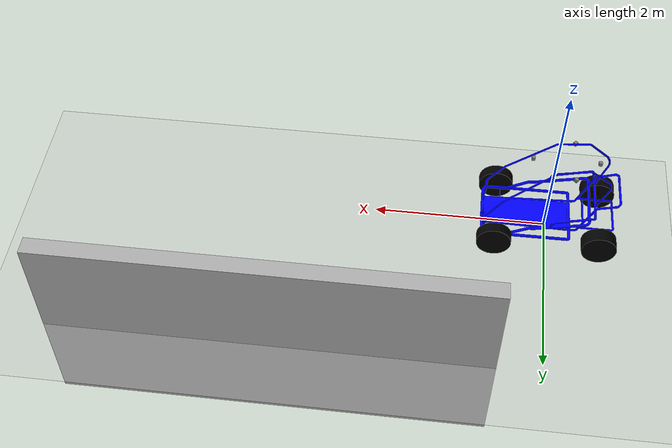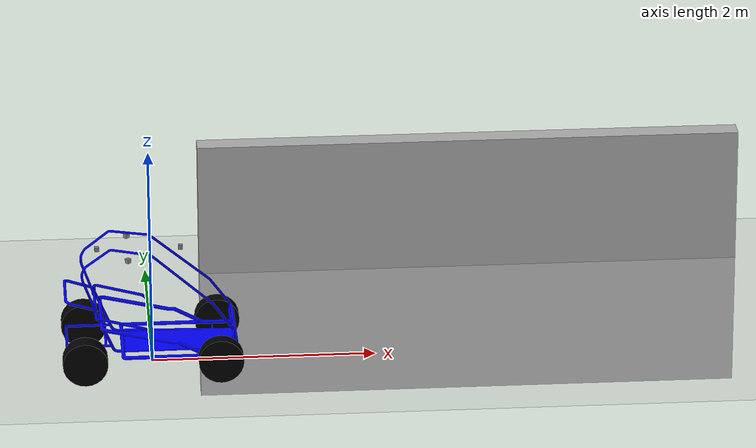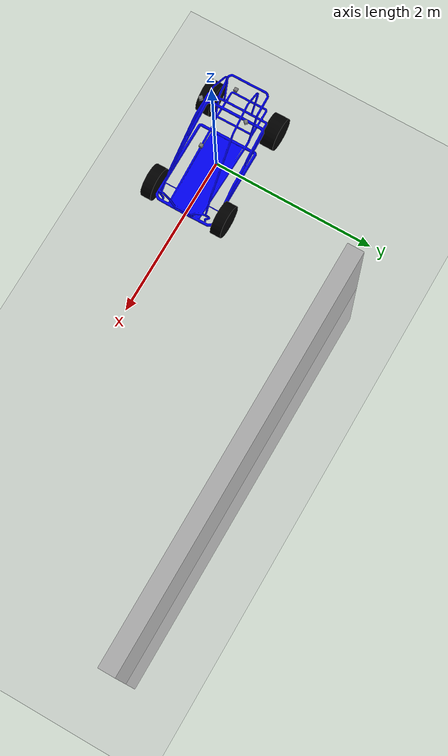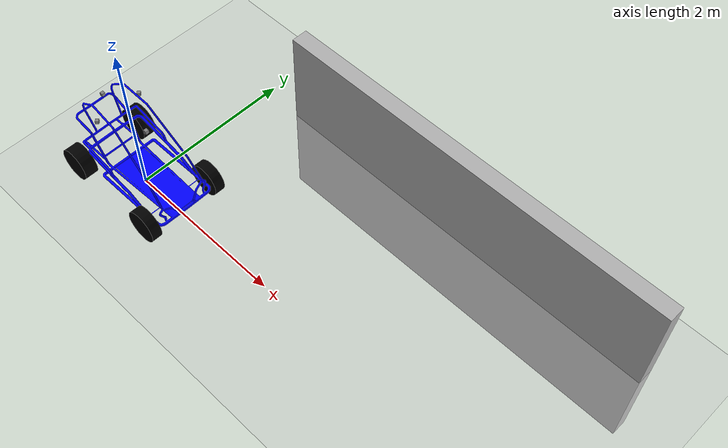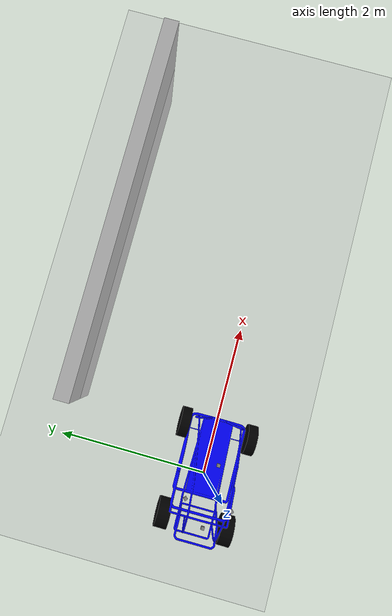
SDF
<?xml version="1.0" ?>
<sdf version="1.8">

    <world name="car_world">
        <!-- must need this for all sensors to work-->
        <plugin name='ignition::gazebo::systems::Sensors' filename='ignition-gazebo-sensors-system'>
            <render_engine>ogre2</render_engine>
        </plugin>
        <plugin
            filename="ignition-gazebo-physics-system"
            name="ignition::gazebo::systems::Physics">
        </plugin>
        <plugin
            filename="ignition-gazebo-user-commands-system"
            name="ignition::gazebo::systems::UserCommands">
        </plugin>
        <plugin
            filename="ignition-gazebo-scene-broadcaster-system"
            name="ignition::gazebo::systems::SceneBroadcaster">
        </plugin>
        <plugin filename="libignition-gazebo-imu-system.so"
        name="ignition::gazebo::systems::Imu">
        </plugin>
        <gui fullscreen='false'>
            <plugin name='3D View' filename='GzScene3D'>
              <ignition-gui>
                <title>3D View</title>
                <property type='bool' key='showTitleBar'>false</property>
                <property type='string' key='state'>docked</property>
              </ignition-gui>
              <engine>ogre2</engine>
              <scene>scene</scene>
              <ambient_light>0.4 0.4 0.4</ambient_light>
              <background_color>0.5 0.8 0.95</background_color>
              <camera_follow>
                <target>vehicle_blue</target>
                <p_gain>0.5</p_gain>
                <offset>-5 0 2</offset>
              </camera_follow>
            </plugin>
            <plugin name='World control' filename='WorldControl'>
              <ignition-gui>
                <title>World control</title>
                <property type='bool' key='showTitleBar'>false</property>
                <property type='bool' key='resizable'>false</property>
                <property type='double' key='height'>72</property>
                <property type='double' key='width'>121</property>
                <property type='double' key='z'>1</property>
                <property type='string' key='state'>floating</property>
                <anchors target='3D View'>
                  <line own='left' target='left'/>
                  <line own='bottom' target='bottom'/>
                </anchors>
              </ignition-gui>
              <play_pause>true</play_pause>
              <step>true</step>
              <start_paused>true</start_paused>
            </plugin>
            <plugin name='World stats' filename='WorldStats'>
              <ignition-gui>
                <title>World stats</title>
                <property type='    bool' key='showTitleBar'>false</property>
                <property type='bool' key='resizable'>false</property>
                <property type='double' key='height'>110</property>
                <property type='double' key='width'>290</property>
                <property type='double' key='z'>1</property>
                <property type='string' key='state'>floating</property>
                <anchors target='3D View'>
                  <line own='right' target='right'/>
                  <line own='bottom' target='bottom'/>
                </anchors>
              </ignition-gui>
              <sim_time>true</sim_time>
              <real_time>true</real_time>
              <real_time_factor>true</real_time_factor>
              <iterations>true</iterations>
            </plugin>
            <plugin name='dis' filename='ImageDisplay'>
              <ignition-gui>
                <property key='state' type='string'>docked</property>
              </ignition-gui>
              <topic>front_camera</topic>
            </plugin>
            <plugin name='Teleop' filename='Teleop'>
              <ignition-gui>
                <property type='string' key='state'>docked</property>
              </ignition-gui>
              <topic>/cmd_vel</topic>
            </plugin>
        </gui>

        <gravity>0 0 -9.8</gravity>
        <magnetic_field>6e-06 2.3e-05 -4.2e-05</magnetic_field>
        <atmosphere type='adiabatic'/>
        <physics type='ode'>
          <max_step_size>0.001</max_step_size>
          <real_time_factor>1</real_time_factor>
          <real_time_update_rate>1000</real_time_update_rate>
        </physics>

        <light type="directional" name="sun">
            <cast_shadows>true</cast_shadows>
            <pose>0 0 10 0 0 0</pose>
            <diffuse>0.8 0.8 0.8 1</diffuse>
            <specular>0.2 0.2 0.2 1</specular>
            <attenuation>
                <range>1000</range>
                <constant>0.9</constant>
                <linear>0.01</linear>
                <quadratic>0.001</quadratic>
            </attenuation>
            <direction>-0.5 0.1 -0.9</direction>
        </light>

        <model name="ground_plane">
            <static>true</static>
            <link name="link">
                <collision name="collision">
                <geometry>
                    <plane>
                    <normal>0 0 1</normal>
                    </plane>
                </geometry>
                </collision>
                <visual name="visual">
                <geometry>
                    <plane>
                    <normal>0 0 1</normal>
                    <size>100 100</size>
                    </plane>
                </geometry>
                <material>
                    <ambient>0.8 0.8 0.8 1</ambient>
                    <diffuse>0.8 0.8 0.8 1</diffuse>
                    <specular>0.8 0.8 0.8 1</specular>
                </material>
                </visual>
            </link>
        </model>

        <model name="simple_wall">
            <static>true</static> <!-- Makes the wall non-movable -->
            <pose>3 2 0 0 0 0</pose> <!-- x, y, z position and roll, pitch, yaw orientation -->
            <link name="wall_link">
              <collision name="wall_collision">
                <geometry>
                  <box>
                    <size>5 0.2 2.5</size> <!-- Width, Depth, Height -->
                  </box>
                </geometry>
                <surface>
                  <contact>
                    <collide_without_contact>true</collide_without_contact>
                  </contact>
                </surface>
              </collision>

              <visual name="wall_visual">
                <geometry>
                  <box>
                    <size>5 0.2 2.5</size> <!-- Width, Depth, Height -->
                  </box>
                </geometry>
                <material>
                  <ambient>0.7 0.7 0.7 1</ambient> <!-- Gray color -->
                  <diffuse>0.7 0.7 0.7 1</diffuse>
                  <specular>0.1 0.1 0.1 1</specular>
                </material>
              </visual>
            </link>
        </model>

        <model name='vehicle_blue' canonical_link='chassis'>
            <pose relative_to='world'>0 0 0 0 0 0</pose>   <!--the pose is relative to the world by default-->

            <!--chassis-->
            <link name='chassis'>
                <pose relative_to='__model__'>0.0 0 0.2 0 0 0</pose>
                <sensor name="imu_sensor" type="imu">
                    <always_on>1</always_on>
                    <update_rate>1</update_rate>
                    <visualize>true</visualize>
                    <topic>imu</topic>
                </sensor>
                <visual name='visual'>
                    <geometry>
			<mesh>
				<uri>new_car_chassis.stl</uri>
                        <scale>0.58 0.58 0.58</scale>
			</mesh>
                    </geometry>
                    <!--Color of the link-->
                    <material>
                        <ambient>0.0 0.0 1.0 1</ambient>
                        <diffuse>0.0 0.0 1.0 1</diffuse>
                        <specular>0.0 0.0 1.0 1</specular>
                    </material>
                </visual>
                <collision name='collision'>
                    <geometry>
                        <mesh>
                            <uri>new_car_chassis.stl</uri>
                            <scale>0.58 0.58 0.58</scale>
                        </mesh>
                    </geometry>
                </collision>
                <!-- Cameras -->
                <sensor name='front_camera_sensor' type='camera'>
                    <pose>0.27 0 1.1 0 0 0</pose>
                    <topic>front_camera</topic>
                    <update_rate>30</update_rate>
                    <enable_metrics>false</enable_metrics>
                    <camera name='front_camera'>
                        <pose>0 0 0 0 -0 0</pose>
                        <horizontal_fov>1.3962600000000001</horizontal_fov>
                        <image>
                            <width>800</width>
                            <height>800</height>
                            <format>RGB_INT8</format>
                            <anti_aliasing>4</anti_aliasing>
                        </image>
                        <camera_info_topic>__default__</camera_info_topic>
                        <trigger_topic></trigger_topic>
                        <triggered>false</triggered>
                        <clip>
                            <near>0.02</near>
                            <far>300</far>
                        </clip>
                    <save enabled='false'>
                        <path>__default__</path>
                    </save>
                    <visibility_mask>4294967295</visibility_mask>
                    <noise>
                        <type>gaussian</type>
                        <mean>0</mean>
                        <stddev>0.0070000000000000001</stddev>
                    </noise>
                    <distortion>
                        <k1>0</k1>
                        <k2>0</k2>
                        <k3>0</k3>
                        <p1>0</p1>
                        <p2>0</p2>
                        <center>0.5 0.5</center>
                    </distortion>
                    <lens>
                        <type>stereographic</type>
                        <scale_to_hfov>true</scale_to_hfov>
                        <cutoff_angle>1.5708</cutoff_angle>
                        <env_texture_size>256</env_texture_size>
                    </lens>
                    <optical_frame_id></optical_frame_id>
                    </camera>
                </sensor>
                <sensor name='back_camera_sensor' type='camera'>
                    <pose>-0.47 0 1.1 0 0 3.1415</pose>
                    <topic>back_camera</topic>
                    <update_rate>30</update_rate>
                    <enable_metrics>false</enable_metrics>
                    <camera name='back_camera'>
                        <pose>0 0 0 0 -0 0</pose>
                        <horizontal_fov>1.3962600000000001</horizontal_fov>
                        <image>
                            <width>800</width>
                            <height>800</height>
                            <format>RGB_INT8</format>
                            <anti_aliasing>4</anti_aliasing>
                        </image>
                        <camera_info_topic>__default__</camera_info_topic>
                        <trigger_topic></trigger_topic>
                        <triggered>false</triggered>
                        <clip>
                            <near>0.02</near>
                            <far>300</far>
                        </clip>
                        <save enabled='false'>
                            <path>__default__</path>
                        </save>
                        <visibility_mask>4294967295</visibility_mask>
                        <noise>
                            <type>gaussian</type>
                            <mean>0</mean>
                            <stddev>0.0070000000000000001</stddev>
                        </noise>
                        <distortion>
                            <k1>0</k1>
                            <k2>0</k2>
                            <k3>0</k3>
                            <p1>0</p1>
                            <p2>0</p2>
                            <center>0.5 0.5</center>
                        </distortion>
                        <lens>
                            <type>stereographic</type>
                            <scale_to_hfov>true</scale_to_hfov>
                            <cutoff_angle>1.5708</cutoff_angle>
                            <env_texture_size>256</env_texture_size>
                        </lens>
                        <optical_frame_id></optical_frame_id>
                    </camera>
                </sensor>
                <sensor name='left_camera_sensor' type='camera'>
                    <pose>-0.2 0.28 1.1 0 0 0.785</pose>
                    <topic>left_camera</topic>
                    <update_rate>30</update_rate>
                    <enable_metrics>false</enable_metrics>
                    <camera name='left_camera'>
                      <pose>0 0 0 0 -0 0</pose>
                      <horizontal_fov>1.3962600000000001</horizontal_fov>
                      <image>
                        <width>800</width>
                        <height>800</height>
                        <format>RGB_INT8</format>
                        <anti_aliasing>4</anti_aliasing>
                      </image>
                      <camera_info_topic>__default__</camera_info_topic>
                      <trigger_topic></trigger_topic>
                      <triggered>false</triggered>
                      <clip>
                        <near>0.02</near>
                        <far>300</far>
                      </clip>
                      <save enabled='false'>
                        <path>__default__</path>
                      </save>
                      <visibility_mask>4294967295</visibility_mask>
                      <noise>
                        <type>gaussian</type>
                        <mean>0</mean>
                        <stddev>0.0070000000000000001</stddev>
                      </noise>
                      <distortion>
                        <k1>0</k1>
                        <k2>0</k2>
                        <k3>0</k3>
                        <p1>0</p1>
                        <p2>0</p2>
                        <center>0.5 0.5</center>
                      </distortion>
                      <lens>
                        <type>stereographic</type>
                        <scale_to_hfov>true</scale_to_hfov>
                        <cutoff_angle>1.5708</cutoff_angle>
                        <env_texture_size>256</env_texture_size>
                      </lens>
                      <optical_frame_id></optical_frame_id>
                    </camera>
                  </sensor>
                  <sensor name='right_camera_sensor' type='camera'>
                    <pose>-0.2 -0.28 1.1 0 0 -0.785</pose>
                    <topic>right_camera</topic>
                    <update_rate>30</update_rate>
                    <enable_metrics>false</enable_metrics>
                    <camera name='right_camera'>
                      <pose>0 0 0 0 -0 0</pose>
                      <horizontal_fov>1.3962600000000001</horizontal_fov>
                      <image>
                        <width>800</width>
                        <height>800</height>
                        <format>RGB_INT8</format>
                        <anti_aliasing>4</anti_aliasing>
                      </image>
                      <camera_info_topic>__default__</camera_info_topic>
                      <trigger_topic></trigger_topic>
                      <triggered>false</triggered>
                      <clip>
                        <near>0.02</near>
                        <far>300</far>
                      </clip>
                      <save enabled='false'>
                        <path>__default__</path>
                      </save>
                      <visibility_mask>4294967295</visibility_mask>
                      <noise>
                        <type>gaussian</type>
                        <mean>0</mean>
                        <stddev>0.0070000000000000001</stddev>
                      </noise>
                      <distortion>
                        <k1>0</k1>
                        <k2>0</k2>
                        <k3>0</k3>
                        <p1>0</p1>
                        <p2>0</p2>
                        <center>0.5 0.5</center>
                      </distortion>
                      <lens>
                        <type>stereographic</type>
                        <scale_to_hfov>true</scale_to_hfov>
                        <cutoff_angle>1.5708</cutoff_angle>
                        <env_texture_size>256</env_texture_size>
                      </lens>
                      <optical_frame_id></optical_frame_id>
                    </camera>
                  </sensor>
            </link>
            <link name='front_camera_marker'>
                <pose>0.27 0 1.1 0 0 0</pose> <!-- Adjust this pose to match the camera's pose -->
                <collision name='camera_marker_collision'>
                    <geometry>
                        <box>
                            <size>0.04 0.04 0.04</size> <!-- Size of the block -->
                        </box>
                    </geometry>
                </collision>
                <visual name='front_camera_marker'>
                    <geometry>
                        <box>
                            <size>0.04 0.04 0.04</size> <!-- Size of the block -->
                        </box>
                    </geometry>
                    <material>
                        <ambient>0.5 0.5 0.5 1</ambient>
                        <diffuse>0.5 0.5 0.5 1</diffuse>
                        <specular>0.5 0.5 0.5 1</specular>
                    </material>
                </visual>
            </link>
            <link name='back_camera_marker'>
                <pose>-0.47 0 1.1 0 0 3.1415</pose> <!-- Adjust this pose to match the camera's pose -->
                <collision name='camera_marker_collision'>
                    <geometry>
                        <box>
                            <size>0.04 0.04 0.04</size> <!-- Size of the block -->
                        </box>
                    </geometry>
                </collision>
                <visual name='back_camera_marker'>
                    <geometry>
                        <box>
                            <size>0.04 0.04 0.04</size> <!-- Size of the block -->
                        </box>
                    </geometry>
                    <material>
                        <ambient>0.5 0.5 0.5 1</ambient>
                        <diffuse>0.5 0.5 0.5 1</diffuse>
                        <specular>0.5 0.5 0.5 1</specular>
                    </material>
                </visual>
            </link>
            <link name='left_camera_marker'>
                <pose>-0.2 0.28 1.1 0 0 0.785</pose> <!-- Adjust this pose to match the camera's pose -->
                <collision name='camera_marker_collision'>
                    <geometry>
                        <box>
                            <size>0.04 0.04 0.04</size> <!-- Size of the block -->
                        </box>
                    </geometry>
                </collision>
                <visual name='left_camera_marker'>
                    <geometry>
                        <box>
                            <size>0.04 0.04 0.04</size> <!-- Size of the block -->
                        </box>
                    </geometry>
                    <material>
                        <ambient>0.5 0.5 0.5 1</ambient>
                        <diffuse>0.5 0.5 0.5 1</diffuse>
                        <specular>0.5 0.5 0.5 1</specular>
                    </material>
                </visual>
            </link>
            <link name='right_camera_marker'>
                <pose>-0.2 -0.28 1.1 0 0 -0.785</pose> <!-- Adjust this pose to match the camera's pose -->
                <collision name='camera_marker_collision'>
                    <geometry>
                        <box>
                            <size>0.04 0.04 0.04</size> <!-- Size of the block -->
                        </box>
                    </geometry>
                </collision>
                <visual name='right_camera_marker'>
                    <geometry>
                        <box>
                            <size>0.04 0.04 0.04</size> <!-- Size of the block -->
                        </box>
                    </geometry>
                    <material>
                        <ambient>0.5 0.5 0.5 1</ambient>
                        <diffuse>0.5 0.5 0.5 1</diffuse>
                        <specular>0.5 0.5 0.5 1</specular>
                    </material>
                </visual>
            </link>

            <!-- WHEELS  -->
            <!--rear Left wheel-->
            <link name='rear_left_wheel'>
                <pose relative_to="chassis">-0.6 0.42 0 -1.5707 0 0</pose> <!--angles are in radian-->
                <inertial>
                    <mass>7</mass>
                    <inertia>
                        <ixx>0.086858</ixx>
                        <ixy>0</ixy>
                        <ixz>0</ixz>
                        <iyy>0.086858</iyy>
                        <iyz>0</iyz>
                        <izz>0.14</izz>
                    </inertia>
                </inertial>
                <visual name='visual'>
                    <geometry>
                        <cylinder>
                            <radius>0.2</radius>
                            <length>0.17</length>
                        </cylinder>
                    </geometry>
                    <material>
                        <ambient>0.0 0.0 0.0 1</ambient>
                        <diffuse>0.0 0.0 0.0 1</diffuse>
                        <specular>0.0 0.0 0.0 1</specular>
                    </material>
                </visual>
                <collision name='collision'>
                    <geometry>
                        <cylinder>
                            <radius>0.2</radius>
                            <length>0.17</length>
                        </cylinder>
                    </geometry>
                </collision>
            </link>

            <!--The same as left wheel but with different position-->
            <link name='rear_right_wheel'>
                <pose relative_to="chassis">-0.6 -0.42 0 -1.5707 0 0</pose> <!--angles are in radian-->
                <inertial>
                    <mass>7</mass>
                    <inertia>
                        <ixx>0.086858</ixx>
                        <ixy>0</ixy>
                        <ixz>0</ixz>
                        <iyy>0.086858</iyy>
                        <iyz>0</iyz>
                        <izz>0.14</izz>
                    </inertia>
                </inertial>
                <visual name='visual'>
                    <geometry>
                        <cylinder>
                            <radius>0.2</radius>
                            <length>0.17</length>
                        </cylinder>
                    </geometry>
                    <material>
                        <ambient>0.0 0.0 0.0 1</ambient>
                        <diffuse>0.0 0.0 0.0 1</diffuse>
                        <specular>0.0 0.0 0.0 1</specular>
                    </material>
                </visual>
                <collision name='collision'>
                    <geometry>
                        <cylinder>
                            <radius>0.2</radius>
                            <length>0.17</length>
                        </cylinder>
                    </geometry>
                </collision>
            </link>

            <!--front Left wheel-->
            <link name='front_left_wheel'>
                <pose relative_to="chassis">0.6 0.45 0 -1.5707 0 0</pose> <!--angles are in radian-->
                <inertial>
                    <mass>5</mass>
                    <inertia>
                        <ixx>0.057042</ixx>
                        <ixy>0</ixy>
                        <ixz>0</ixz>
                        <iyy>0.057042</iyy>
                        <iyz>0</iyz>
                        <izz>0.1</izz>
                    </inertia>
                </inertial>
                <visual name='visual'>
                    <geometry>
                        <cylinder>
                            <radius>0.2</radius>
                            <length>0.13</length>
                        </cylinder>
                    </geometry>
                    <material>
                        <ambient>0.0 0.0 0.0 1</ambient>
                        <diffuse>0.0 0.0 0.0 1</diffuse>
                        <specular>0.0 0.0 0.0 1</specular>
                    </material>
                </visual>
                <collision name='collision'>
                    <geometry>
                        <cylinder>
                            <radius>0.2</radius>
                            <length>0.13</length>
                        </cylinder>
                    </geometry>
                </collision>
            </link>

            <!--front Left wheel-->
            <link name='front_right_wheel'>
                <pose relative_to="chassis">0.6 -0.45 0 -1.5707 0 0</pose> <!--angles are in radian-->
                <inertial>
                    <mass>5</mass>
                    <inertia>
                        <ixx>0.057042</ixx>
                        <ixy>0</ixy>
                        <ixz>0</ixz>
                        <iyy>0.057042</iyy>
                        <iyz>0</iyz>
                        <izz>0.1</izz>
                    </inertia>
                </inertial>
                <visual name='visual'>
                    <geometry>
                        <cylinder>
                            <radius>0.2</radius>
                            <length>0.13</length>
                        </cylinder>
                    </geometry>
                    <material>
                        <ambient>0.0 0.0 0.0 1</ambient>
                        <diffuse>0.0 0.0 0.0 1</diffuse>
                        <specular>0.0 0.0 0.0 1</specular>
                    </material>
                </visual>
                <collision name='collision'>
                    <geometry>
                        <cylinder>
                            <radius>0.2</radius>
                            <length>0.13</length>
                        </cylinder>
                    </geometry>
                </collision>
            </link>

            <!-- - - - - - - - - - - - - - - - - LINKAGE - - - - - - - -  - - - - - - - - - - -->
            <!--front left wheel steering link-->
            <link name='front_left_steering_link'>
                <pose relative_to='front_left_wheel'/>
                <inertial>
                    <mass>0.5</mass>
                    <inertia>
                      <ixx>0.015299999999999999</ixx>
                      <iyy>0.025000000000000001</iyy>
                      <izz>0.015299999999999999</izz>
                      <ixy>0</ixy>
                      <ixz>0</ixz>
                      <iyz>0</iyz>
                    </inertia>
                    <pose>0 0 0 0 -0 0</pose>
                  </inertial>
                  <enable_wind>false</enable_wind>
            </link>

            <!--front right wheel link-->
            <link name='front_right_steering_link'>
                <pose relative_to='front_right_wheel'/>
                <inertial>
                    <mass>0.5</mass>
                    <inertia>
                      <ixx>0.015299999999999999</ixx>
                      <iyy>0.025000000000000001</iyy>
                      <izz>0.015299999999999999</izz>
                      <ixy>0</ixy>
                      <ixz>0</ixz>
                      <iyz>0</iyz>
                    </inertia>
                    <pose>0 0 0 0 -0 0</pose>
                  </inertial>
                  <enable_wind>false</enable_wind>
            </link>

            <!--front left steering joint-->
            <joint name='front_left_steering_joint' type='revolute'>
                <parent>chassis</parent>
                <child>front_left_steering_link</child>
                <axis>
                    <xyz expressed_in='__model__'>0 0 1</xyz> <!-- z-axis for steering -->
                    <limit>
                        <lower>-1.79769e+308</lower>    <!--negative infinity-->
                        <upper>1.79769e+308</upper>     <!--positive infinity-->
                    </limit>
                </axis>
            </joint>

            <!--front right steering joint-->
            <joint name='front_right_steering_joint' type='revolute'>
                <parent>chassis</parent>
                <child>front_right_steering_link</child>
                <axis>
                    <xyz expressed_in='__model__'>0 0 1</xyz> <!-- z-axis for steering -->
                    <limit>
                        <lower>-1.79769e+308</lower>    <!--negative infinity-->
                        <upper>1.79769e+308</upper>     <!--positive infinity-->
                    </limit>
                </axis>
            </joint>

            <!-- - - - - - - - - - - - - -DEFINING JOINTS - - - - - - - - - - - - - - - - - -->
            <!--rear left wheel joint-->
            <joint name='rear_left_wheel_joint' type='revolute'>
                <pose relative_to='rear_left_wheel'/>
                <parent>chassis</parent>
                <child>rear_left_wheel</child>
                <axis>
                    <xyz expressed_in='__model__'>0 1 0</xyz> <!--can be descired to any frame or even arbitrary frames-->
                    <limit>
                        <lower>-1.79769e+308</lower>    <!--negative infinity-->
                        <upper>1.79769e+308</upper>     <!--positive infinity-->
                    </limit>
                </axis>
            </joint>

            <!--rear right wheel joint-->
            <joint name='rear_right_wheel_joint' type='revolute'>
                <pose relative_to='rear_right_wheel'/>
                <parent>chassis</parent>
                <child>rear_right_wheel</child>
                <axis>
                    <xyz expressed_in='__model__'>0 1 0</xyz>
                    <limit>
                        <lower>-1.79769e+308</lower>    <!--negative infinity-->
                        <upper>1.79769e+308</upper>     <!--positive infinity-->
                    </limit>
                </axis>
            </joint>

            <!--front left wheel joint-->
            <joint name='front_left_wheel_joint' type='revolute'>
                <pose relative_to='front_left_wheel'/>
                <parent>front_left_steering_link</parent>
                <child>front_left_wheel</child>
                <axis>
                    <xyz expressed_in='__model__'>0 1 0</xyz> <!--can be descired to any frame or even arbitrary frames-->
                    <limit>
                        <lower>-1.79769e+308</lower>    <!--negative infinity-->
                        <upper>1.79769e+308</upper>     <!--positive infinity-->
                    </limit>
                </axis>
            </joint>

            <!--front right wheel joint-->
            <joint name='front_right_wheel_joint' type='revolute'>
                <pose relative_to='front_right_wheel'/>
                <parent>front_right_steering_link</parent>
                <child>front_right_wheel</child>
                <axis>
                    <xyz expressed_in='__model__'>0 1 0</xyz> <!--can be descired to any frame or even arbitrary frames-->
                    <limit>
                        <lower>-1.79769e+308</lower>    <!--negative infinity-->
                        <upper>1.79769e+308</upper>     <!--positive infinity-->
                    </limit>
                </axis>
            </joint>

            <joint name='front_camera_joint' type='fixed'>
                <parent>chassis</parent>
                <child>front_camera_marker</child>
                <pose>0.27 0 1.1 0 0 0</pose> <!-- Adjust this pose if necessary -->
            </joint>
            <joint name='back_camera_joint' type='fixed'>
                <parent>chassis</parent>
                <child>back_camera_marker</child>
                <pose>-0.47 0 1.1 0 0 3.1415</pose> <!-- Adjust this pose if necessary -->
            </joint>
            <joint name='left_camera_joint' type='fixed'>
                <parent>chassis</parent>
                <child>left_camera_marker</child>
                <pose>-0.2 0.28 1.1 0 0 0.785</pose> <!-- Adjust this pose if necessary -->
            </joint>
            <joint name='right_camera_joint' type='fixed'>
                <parent>chassis</parent>
                <child>right_camera_marker</child>
                <pose>-0.2 -0.28 1.1 0 0 -0.785</pose> <!-- Adjust this pose if necessary -->
            </joint>
            <plugin name='ignition::gazebo::systems::AckermannSteering' filename='ignition-gazebo-ackermann-steering-system'>
                <topic>/cmd_vel</topic>
                <!-- https://gazebosim.org/api/gazebo/6/classignition_1_1gazebo_1_1systems_1_1AckermannSteering.html
                for more info.
                by default there's an odom and tf topic being published-->
                <left_joint>front_left_wheel_joint</left_joint>
                <left_joint>rear_left_wheel_joint</left_joint>
                <right_joint>front_right_wheel_joint</right_joint>
                <right_joint>rear_right_wheel_joint</right_joint>
                <left_steering_joint>front_left_steering_joint</left_steering_joint>
                <right_steering_joint>front_right_steering_joint</right_steering_joint>
                <kingpin_width>0.75</kingpin_width>
                <steering_limit>0.5</steering_limit>
                <wheel_base>1.25</wheel_base>
                <wheel_separation>0.9</wheel_separation>
                <wheel_radius>0.2</wheel_radius>
                <min_velocity>-10</min_velocity>
                <max_velocity>100</max_velocity>
                <min_acceleration>-30</min_acceleration>
                <max_acceleration>30</max_acceleration>
            </plugin>
            <static>false</static>
            <self_collide>false</self_collide>
        </model>
    </world>
</sdf>
